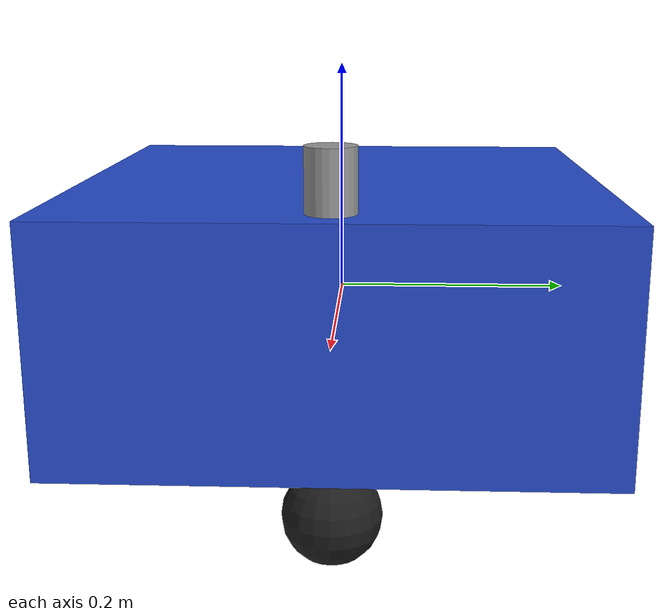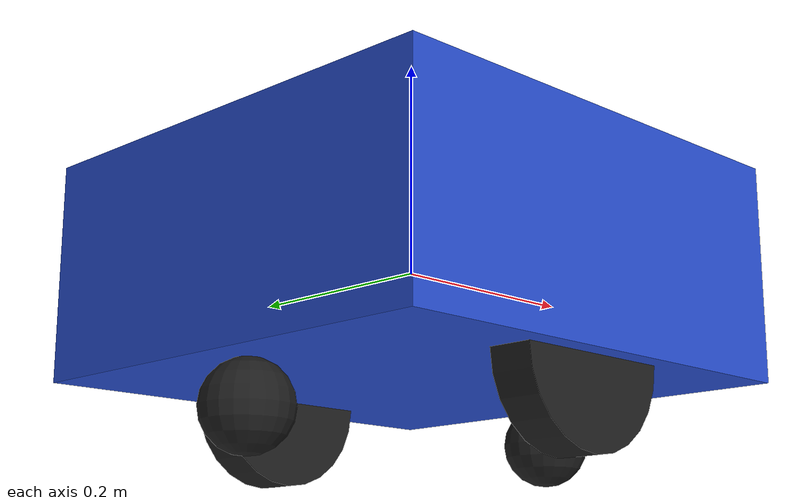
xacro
<?xml version="1.0" encoding="utf-8"?>

<robot name="robot" xmlns:xacro="http://www.ros.org/wiki/xacro">

    <!-- include -->
    <xacro:include filename="$(find docking_gazebo)/urdf/inertia.urdf.xacro" />
    <xacro:include filename="$(find docking_gazebo)/urdf/property.urdf.xacro" />
    <xacro:include filename="$(find docking_gazebo)/urdf/wheel.urdf.xacro" />
    <xacro:include filename="$(find docking_gazebo)/urdf/ball.urdf.xacro" />
    <xacro:include filename="$(find docking_gazebo)/urdf/lidar.urdf.xacro" />

    <!-- base_link -->
    <link name="base_link">
        <visual>
            <origin xyz="0 0 0" rpy="0 0 0" />
            <geometry>
                <box size="0.45 0.45 0.20" />
            </geometry>
        </visual>
        <collision>
            <origin xyz="0 0 0" rpy="0 0 0" />
            <geometry>
                <box size="0.01 0.01 0.01" />
            </geometry>
        </collision>
        <xacro:box_inertial_matrix m="10.0" w="0.45" h="0.45" d="0.20" />
    </link>

    <gazebo reference="base_link">
        <material>Gazebo/Blue</material>
    </gazebo>

    <!-- Wheel Definitions -->
    <xacro:wheel lr="right" transY="0.185" parent="base_link" />
    <xacro:wheel lr="left" transY="-0.185" parent="base_link" />

    <!-- Ball Definitions -->
    <xacro:ball fb="front" transX="0.185" parent="base_link" />
    <xacro:ball fb="back" transX="-0.185" parent="base_link" />

    <!-- Lidar -->
    <xacro:lidar />

    <!-- wheel control -->
    <gazebo>
        <plugin name="differential_drive_controller" filename="libgazebo_ros_diff_drive.so">
            <rosDebugLevel>Debug</rosDebugLevel>
            <publishWheelTF>true</publishWheelTF>
            <robotNamespace>/</robotNamespace>
            <publishOdomTF>true</publishOdomTF>
            <publishTf>1</publishTf>
            <publishWheelJointState>true</publishWheelJointState>
            <broadcastTF>1</broadcastTF>
            <alwaysOn>true</alwaysOn>
            <updateRate>100.0</updateRate>
            <legacyMode>true</legacyMode>
            <leftJoint>wheel_left_joint</leftJoint>
            <rightJoint>wheel_right_joint</rightJoint>
            <wheelSeparation>0.37</wheelSeparation>
            <wheelDiameter>0.16</wheelDiameter>
            <wheelTorque>30</wheelTorque>
            <wheelAcceleration>1.8</wheelAcceleration>
            <commandTopic>cmd_vel</commandTopic>
            <odometryFrame>odom</odometryFrame>
            <odometryTopic>odom</odometryTopic>
            <robotBaseFrame>base_link</robotBaseFrame>
        </plugin>
    </gazebo>

</robot>

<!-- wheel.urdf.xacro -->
<robot xmlns:xacro="http://www.ros.org/wiki/xacro">

    <!-- Macro for wheel joint -->
    <xacro:macro name="wheel" params="lr transY parent">
        <!-- lr: left, right -->
        <link name="wheel_${lr}_link">
            <visual>
                <origin xyz="0 0 0" rpy="${M_PI/2} 0  0 " />
                <geometry>
                    <cylinder length="0.04" radius="0.08" />
                </geometry>
                <material name="Black" />
            </visual>
            <collision>
                <origin xyz="0 0 0" rpy="${M_PI/2} 0 0 " />
                <geometry>
                    <cylinder length="0.04" radius="0.08" />
                </geometry>
            </collision>
            <xacro:cylinder_inertial_matrix m="0.4" r="0.08" h="0.04" />
        </link>

        <gazebo reference="wheel_${lr}_link">
            <material>Gazebo/Black</material>
        </gazebo>

        <gazebo reference="wheel_${lr}_link">
            <mu1>5.0</mu1>
            <mu2>1.0</mu2>
            <kp>10000.0</kp>
            <kd>10.0</kd>
            <minDepth>0.0</minDepth>
            <maxVel>5</maxVel>
            <fdir1>0 0 0</fdir1>
        </gazebo>

        <joint name="wheel_${lr}_joint" type="continuous">
            <parent link="${parent}"/>
            <child link="wheel_${lr}_link"/>
            <origin xyz="0 ${transY} -0.1" rpy="0 0 0" />
            <axis xyz="0 1 0" rpy="0 0 0" />
        </joint>

    </xacro:macro>
</robot>

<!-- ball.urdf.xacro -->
<robot xmlns:xacro="http://www.ros.org/wiki/xacro">

    <!-- Macro for ball joint -->
    <xacro:macro name="ball" params="fb transX parent">
        <!-- fb: front, back -->
        <link name="${fb}_ball_link">
            <visual>
                <origin xyz="0 0 0 " rpy="0 0 0" />
                <geometry>
                    <sphere radius="0.04" />
                </geometry>
                <material name="Black" />
            </visual>
            <collision>
                <geometry>
                    <sphere radius="0.04" />
                </geometry>
                <origin xyz="0 0 0 " rpy="0 0 0" />
            </collision>
            <xacro:sphere_inertial_matrix m="0.01" r="0.04" />
        </link>

        <gazebo reference="${fb}_ball_link">
            <material>Gazebo/Black</material>
        </gazebo>

        <gazebo reference="${fb}_ball_link">
            <mu1>0.01</mu1>
            <mu2>0.01</mu2>
        </gazebo>

        <joint name="${fb}_ball_joint" type="fixed">
            <parent link="${parent}"/>
            <child link="${fb}_ball_link"/>
            <origin xyz="${transX} 0 -0.14" rpy="0 0 0"/>
        </joint>
    </xacro:macro>

</robot>

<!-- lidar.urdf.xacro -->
<robot xmlns:xacro="http://www.ros.org/wiki/xacro" name="laser">

    <xacro:macro name="lidar">

        <joint name="lidar_joint" type="fixed">
            <parent link="base_link"/>
            <child link="lidar_link"/>
            <origin xyz="0.185 0 0.125" rpy="0 0 0" />
        </joint>

        <link name="lidar_link">
            <inertial>
                <mass value="0.1" />
                <origin xyz="0 0 0" />
                <inertia ixx="0.01" ixy="0.0" ixz="0.0"
                         iyy="0.01" iyz="0.0"
                         izz="0.01" />
            </inertial>
            <visual>
                <origin xyz="0 0 0" rpy="0 0 0" />
                <geometry>
                    <cylinder length="0.05" radius="0.02"/>
                </geometry>
                <material name="gray"/>
            </visual>
            <collision>
                <origin xyz="0 0 0" rpy="0 0 0" />
                <geometry>
                    <cylinder length="0.01" radius="0.01"/>
                </geometry>
            </collision>
        </link>

        <gazebo reference="lidar_link">
            <material>Gazebo/Black</material>
        </gazebo>

        <gazebo reference="lidar_link">
            <sensor type="ray" name="rplidar">
                <pose>0 0 0 0 0 0</pose>
                <visualize>false</visualize>
                <update_rate>5.5</update_rate>
                <ray>
                    <scan>
                        <horizontal>
                            <samples>360</samples>
                            <resolution>1</resolution>
                            <min_angle>-3.10</min_angle>
                            <max_angle>3.10</max_angle>
                        </horizontal>
                    </scan>
                    <range>
                        <min>0.05</min>
                        <max>6.0</max>
                        <resolution>0.01</resolution>
                    </range>
                    <noise>
                        <type>gaussian</type>
                        <mean>0.0</mean>
                        <stddev>0.01</stddev>
                    </noise>
                </ray>
                <plugin name="gazebo_rplidar" filename="libgazebo_ros_laser.so">
                    <topicName>/scan</topicName>
                    <frameName>lidar_link</frameName>
                </plugin>
            </sensor>
        </gazebo>

    </xacro:macro>
</robot>
